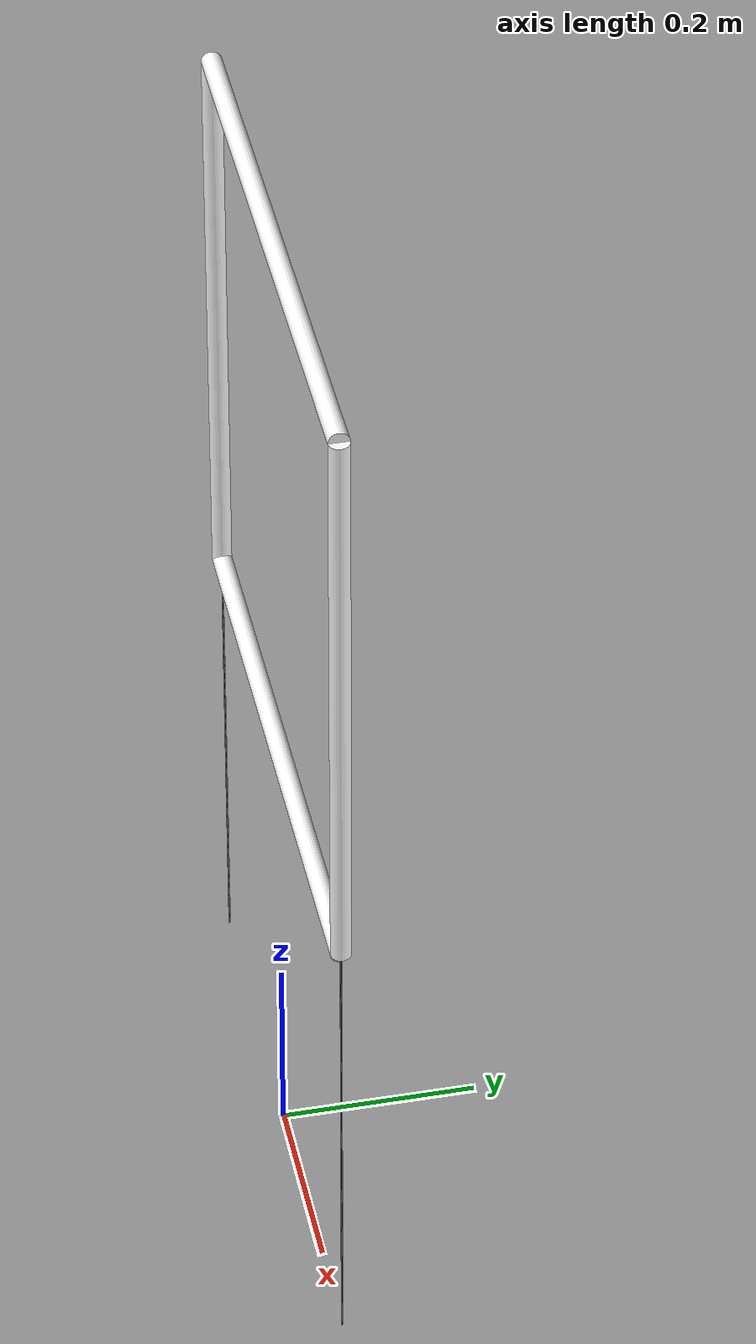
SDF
<?xml version="1.0"?>
<sdf version="1.11">  <model name="torpedo_panel_base">
    <static>1</static>

    <link name="buoy_top">
      <pose>0 0 1.1 0 1.5707 0</pose>
      <visual name="buoy_top_vis">
        <geometry>
          <cylinder>
            <radius>0.01</radius>
            <length>0.6</length>
          </cylinder>
        </geometry>
        <material>
          <ambient>1 1 1 1</ambient>
          <diffuse>1 1 1 1</diffuse>
          <specular>0.1 0.1 0.1 1</specular>
        </material>
      </visual>
      <collision name="buoy_top_collide">
        <geometry>
          <cylinder>
            <radius>0.01</radius>
            <length>0.6</length>
          </cylinder>
        </geometry>
      </collision>
    </link>

    <link name="buoy_bottom">
      <pose>0 0 0.5 0 1.5707 0</pose>
      <visual name="buoy_bottom_vis">
        <geometry>
          <cylinder>
            <radius>0.01</radius>
            <length>0.6</length>
          </cylinder>
        </geometry>
        <material>
          <ambient>1 1 1 1</ambient>
          <diffuse>1 1 1 1</diffuse>
          <specular>0.1 0.1 0.1 1</specular>
        </material>
      </visual>
      <collision name="buoy_bottom_collide">
        <geometry>
          <cylinder>
            <radius>0.01</radius>
            <length>0.6</length>
          </cylinder>
        </geometry>
      </collision>
    </link>

    <link name="buoy_side_left">
      <pose>-0.3 0 0.8 0 0 0</pose>
      <visual name="buoy_side_left_vis">
        <geometry>
          <cylinder>
            <radius>0.01</radius>
            <length>0.6</length>
          </cylinder>
        </geometry>
        <material>
          <ambient>1 1 1 1</ambient>
          <diffuse>1 1 1 1</diffuse>
          <specular>0.1 0.1 0.1 1</specular>
        </material>
      </visual>
      <collision name="buoy_side_left_collide">
        <geometry>
          <cylinder>
            <radius>0.01</radius>
            <length>0.6</length>
          </cylinder>
        </geometry>
      </collision>
    </link>

    <link name="buoy_side_right">
      <pose>0.3 0 0.8 0 0 0</pose>
      <visual name="buoy_side_right_vis">
        <geometry>
          <cylinder>
            <radius>0.01</radius>
            <length>0.6</length>
          </cylinder>
        </geometry>
        <material>
          <ambient>1 1 1 1</ambient>
          <diffuse>1 1 1 1</diffuse>
          <specular>0.1 0.1 0.1 1</specular>
        </material>
      </visual>
      <collision name="buoy_side_right_collide">
        <geometry>
          <cylinder>
            <radius>0.01</radius>
            <length>0.6</length>
          </cylinder>
        </geometry>
      </collision>
    </link>

    <link name="buoy_mooring_left">
      <pose>-0.3 0 0.25 0 0 0</pose>
      <visual name="buoy_mooring_left_vis">
        <geometry>
          <cylinder>
            <radius>0.001</radius>
            <length>0.5</length>
          </cylinder>
        </geometry>
        <material>
          <ambient>0 0 0 1</ambient>
          <diffuse>0 0 0 1</diffuse>
          <specular>0.1 0.1 0.1 1</specular>
        </material>
      </visual>
    </link>

    <link name="buoy_mooring_right">
      <pose>0.3 0 0.25 0 0 0</pose>
      <visual name="buoy_mooring_right_vis">
        <geometry>
          <cylinder>
            <radius>0.001</radius>
            <length>0.5</length>
          </cylinder>
        </geometry>
        <material>
          <ambient>0 0 0 1</ambient>
          <diffuse>0 0 0 1</diffuse>
          <specular>0.1 0.1 0.1 1</specular>
        </material>
      </visual>
    </link>
  </model>
</sdf>
